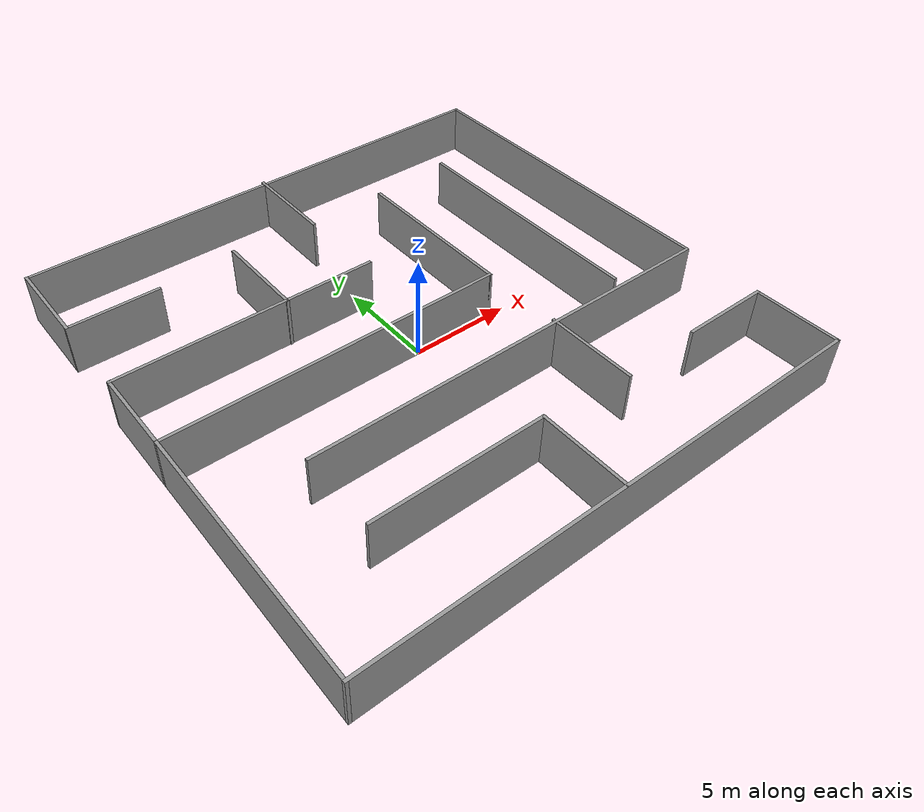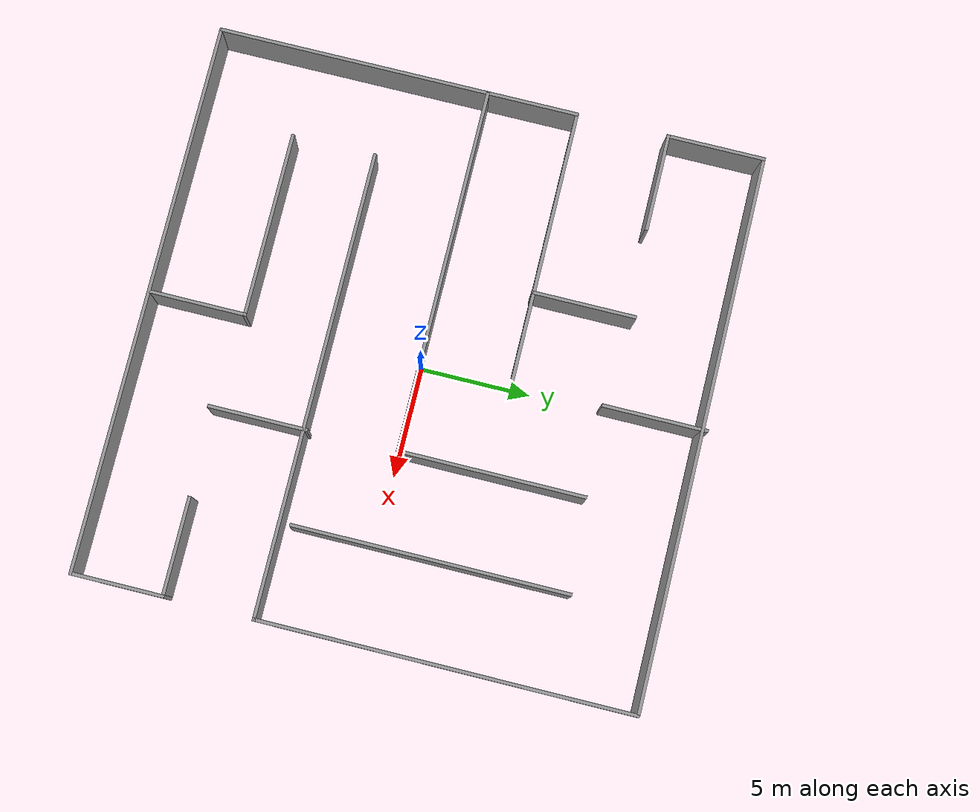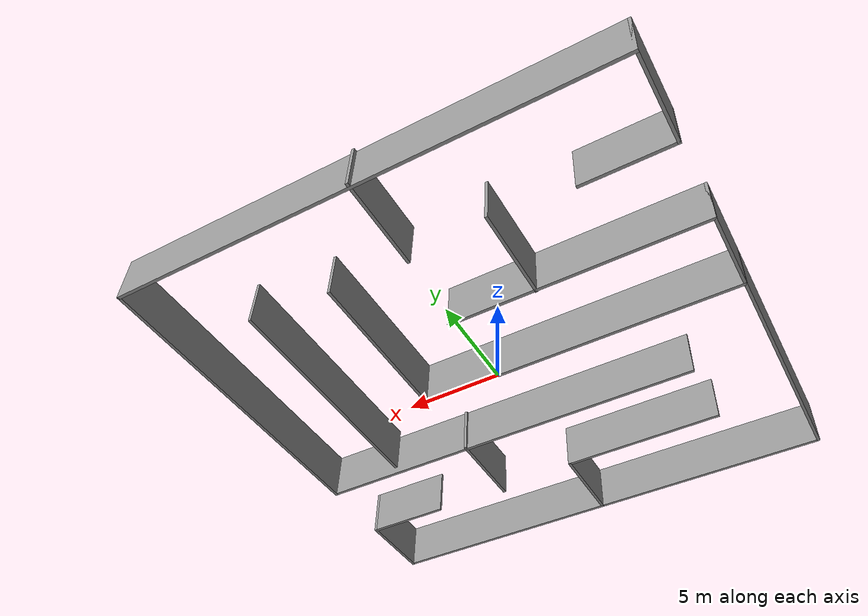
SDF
<?xml version='1.0'?>
<sdf version='1.7'>
  <model name='maze4'>
    <pose>0.052131 0.211234 0 0 -0 0</pose>
    <link name='Wall_186'>
      <collision name='Wall_186_Collision'>
        <geometry>
          <box>
            <size>4.5 0.15 2.5</size>
          </box>
        </geometry>
        <pose>0 0 1.25 0 -0 0</pose>
      </collision>
      <visual name='Wall_186_Visual'>
        <pose>0 0 1.25 0 -0 0</pose>
        <geometry>
          <box>
            <size>4.5 0.15 2.5</size>
          </box>
        </geometry>
        <material>
          <script>
            <uri>file://media/materials/scripts/gazebo.material</uri>
            <name>Gazebo/Grey</name>
          </script>
          <ambient>1 1 1 1</ambient>
        </material>
        <meta>
          <layer>0</layer>
        </meta>
      </visual>
      <pose>-10.3717 8.05219 0 0 -0 3.14159</pose>
    </link>
    <link name='Wall_187'>
      <collision name='Wall_187_Collision'>
        <geometry>
          <box>
            <size>4.5 0.15 2.5</size>
          </box>
        </geometry>
        <pose>0 0 1.25 0 -0 0</pose>
      </collision>
      <visual name='Wall_187_Visual'>
        <pose>0 0 1.25 0 -0 0</pose>
        <geometry>
          <box>
            <size>4.5 0.15 2.5</size>
          </box>
        </geometry>
        <material>
          <script>
            <uri>file://media/materials/scripts/gazebo.material</uri>
            <name>Gazebo/Grey</name>
          </script>
          <ambient>1 1 1 1</ambient>
        </material>
        <meta>
          <layer>0</layer>
        </meta>
      </visual>
      <pose>-12.5467 10.2272 0 0 -0 1.5708</pose>
    </link>
    <link name='Wall_188'>
      <collision name='Wall_188_Collision'>
        <geometry>
          <box>
            <size>25.25 0.15 2.5</size>
          </box>
        </geometry>
        <pose>0 0 1.25 0 -0 0</pose>
      </collision>
      <visual name='Wall_188_Visual'>
        <pose>0 0 1.25 0 -0 0</pose>
        <geometry>
          <box>
            <size>25.25 0.15 2.5</size>
          </box>
        </geometry>
        <material>
          <script>
            <uri>file://media/materials/scripts/gazebo.material</uri>
            <name>Gazebo/Grey</name>
          </script>
          <ambient>1 1 1 1</ambient>
        </material>
        <meta>
          <layer>0</layer>
        </meta>
      </visual>
      <pose>0.003348 12.4022 0 0 -0 0</pose>
    </link>
    <link name='Wall_189'>
      <collision name='Wall_189_Collision'>
        <geometry>
          <box>
            <size>17 0.15 2.5</size>
          </box>
        </geometry>
        <pose>0 0 1.25 0 -0 0</pose>
      </collision>
      <visual name='Wall_189_Visual'>
        <pose>0 0 1.25 0 -0 0</pose>
        <geometry>
          <box>
            <size>17 0.15 2.5</size>
          </box>
        </geometry>
        <material>
          <script>
            <uri>file://media/materials/scripts/gazebo.material</uri>
            <name>Gazebo/Grey</name>
          </script>
          <ambient>1 1 1 1</ambient>
        </material>
        <meta>
          <layer>0</layer>
        </meta>
      </visual>
      <pose>12.5533 3.97719 0 0 -0 -1.5708</pose>
    </link>
    <link name='Wall_190'>
      <collision name='Wall_190_Collision'>
        <geometry>
          <box>
            <size>21.25 0.15 2.5</size>
          </box>
        </geometry>
        <pose>0 0 1.25 0 -0 0</pose>
      </collision>
      <visual name='Wall_190_Visual'>
        <pose>0 0 1.25 0 -0 0</pose>
        <geometry>
          <box>
            <size>21.25 0.15 2.5</size>
          </box>
        </geometry>
        <material>
          <script>
            <uri>file://media/materials/scripts/gazebo.material</uri>
            <name>Gazebo/Grey</name>
          </script>
          <ambient>1 1 1 1</ambient>
        </material>
        <meta>
          <layer>0</layer>
        </meta>
      </visual>
      <pose>2.00335 -4.44781 0 0 -0 3.14159</pose>
    </link>
    <link name='Wall_192'>
      <collision name='Wall_192_Collision'>
        <geometry>
          <box>
            <size>4.75 0.15 2.5</size>
          </box>
        </geometry>
        <pose>0 0 1.25 0 -0 0</pose>
      </collision>
      <visual name='Wall_192_Visual'>
        <pose>0 0 1.25 0 -0 0</pose>
        <geometry>
          <box>
            <size>4.75 0.15 2.5</size>
          </box>
        </geometry>
        <material>
          <script>
            <uri>file://media/materials/scripts/gazebo.material</uri>
            <name>Gazebo/Grey</name>
          </script>
          <ambient>1 1 1 1</ambient>
        </material>
        <meta>
          <layer>0</layer>
        </meta>
      </visual>
      <pose>-0.035179 10.2818 0 0 -0 1.5708</pose>
    </link>
    <link name='Wall_194'>
      <collision name='Wall_194_Collision'>
        <geometry>
          <box>
            <size>12.5 0.15 2.5</size>
          </box>
        </geometry>
        <pose>0 0 1.25 0 -0 0</pose>
      </collision>
      <visual name='Wall_194_Visual'>
        <pose>0 0 1.25 0 -0 0</pose>
        <geometry>
          <box>
            <size>12.5 0.15 2.5</size>
          </box>
        </geometry>
        <material>
          <script>
            <uri>file://media/materials/scripts/gazebo.material</uri>
            <name>Gazebo/Grey</name>
          </script>
          <ambient>1 1 1 1</ambient>
        </material>
        <meta>
          <layer>0</layer>
        </meta>
      </visual>
      <pose>8.26701 2.26641 0 0 -0 1.5708</pose>
    </link>
    <link name='Wall_196'>
      <collision name='Wall_196_Collision'>
        <geometry>
          <box>
            <size>4.5 0.15 2.5</size>
          </box>
        </geometry>
        <pose>0 0 1.25 0 -0 0</pose>
      </collision>
      <visual name='Wall_196_Visual'>
        <pose>0 0 1.25 0 -0 0</pose>
        <geometry>
          <box>
            <size>4.5 0.15 2.5</size>
          </box>
        </geometry>
        <material>
          <script>
            <uri>file://media/materials/scripts/gazebo.material</uri>
            <name>Gazebo/Grey</name>
          </script>
          <ambient>1 1 1 1</ambient>
        </material>
        <meta>
          <layer>0</layer>
        </meta>
      </visual>
      <pose>4.11592 -6.50574 0 0 -0 -1.5708</pose>
    </link>
    <link name='Wall_198'>
      <collision name='Wall_198_Collision'>
        <geometry>
          <box>
            <size>4.5 0.15 2.5</size>
          </box>
        </geometry>
        <pose>0 0 1.25 0 -0 0</pose>
      </collision>
      <visual name='Wall_198_Visual'>
        <pose>0 0 1.25 0 -0 0</pose>
        <geometry>
          <box>
            <size>4.5 0.15 2.5</size>
          </box>
        </geometry>
        <material>
          <script>
            <uri>file://media/materials/scripts/gazebo.material</uri>
            <name>Gazebo/Grey</name>
          </script>
          <ambient>1 1 1 1</ambient>
        </material>
        <meta>
          <layer>0</layer>
        </meta>
      </visual>
      <pose>10.3717 -8.48183 0 0 -0 0</pose>
    </link>
    <link name='Wall_199'>
      <collision name='Wall_199_Collision'>
        <geometry>
          <box>
            <size>4.25 0.15 2.5</size>
          </box>
        </geometry>
        <pose>0 0 1.25 0 -0 0</pose>
      </collision>
      <visual name='Wall_199_Visual'>
        <pose>0 0 1.25 0 -0 0</pose>
        <geometry>
          <box>
            <size>4.25 0.15 2.5</size>
          </box>
        </geometry>
        <material>
          <script>
            <uri>file://media/materials/scripts/gazebo.material</uri>
            <name>Gazebo/Grey</name>
          </script>
          <ambient>1 1 1 1</ambient>
        </material>
        <meta>
          <layer>0</layer>
        </meta>
      </visual>
      <pose>12.5467 -10.5318 0 0 -0 -1.5708</pose>
    </link>
    <link name='Wall_200'>
      <collision name='Wall_200_Collision'>
        <geometry>
          <box>
            <size>25.25 0.15 2.5</size>
          </box>
        </geometry>
        <pose>0 0 1.25 0 -0 0</pose>
      </collision>
      <visual name='Wall_200_Visual'>
        <pose>0 0 1.25 0 -0 0</pose>
        <geometry>
          <box>
            <size>25.25 0.15 2.5</size>
          </box>
        </geometry>
        <material>
          <script>
            <uri>file://media/materials/scripts/gazebo.material</uri>
            <name>Gazebo/Grey</name>
          </script>
          <ambient>1 1 1 1</ambient>
        </material>
        <meta>
          <layer>0</layer>
        </meta>
      </visual>
      <pose>-0.003348 -12.5818 0 0 -0 3.14159</pose>
    </link>
    <link name='Wall_201'>
      <collision name='Wall_201_Collision'>
        <geometry>
          <box>
            <size>12.5 0.15 2.5</size>
          </box>
        </geometry>
        <pose>0 0 1.25 0 -0 0</pose>
      </collision>
      <visual name='Wall_201_Visual'>
        <pose>0 0 1.25 0 -0 0</pose>
        <geometry>
          <box>
            <size>12.5 0.15 2.5</size>
          </box>
        </geometry>
        <material>
          <script>
            <uri>file://media/materials/scripts/gazebo.material</uri>
            <name>Gazebo/Grey</name>
          </script>
          <ambient>1 1 1 1</ambient>
        </material>
        <meta>
          <layer>0</layer>
        </meta>
      </visual>
      <pose>-12.5533 -6.40683 0 0 -0 1.5708</pose>
    </link>
    <link name='Wall_202'>
      <collision name='Wall_202_Collision'>
        <geometry>
          <box>
            <size>16.75 0.15 2.5</size>
          </box>
        </geometry>
        <pose>0 0 1.25 0 -0 0</pose>
      </collision>
      <visual name='Wall_202_Visual'>
        <pose>0 0 1.25 0 -0 0</pose>
        <geometry>
          <box>
            <size>16.75 0.15 2.5</size>
          </box>
        </geometry>
        <material>
          <script>
            <uri>file://media/materials/scripts/gazebo.material</uri>
            <name>Gazebo/Grey</name>
          </script>
          <ambient>1 1 1 1</ambient>
        </material>
        <meta>
          <layer>0</layer>
        </meta>
      </visual>
      <pose>-4.25335 -0.23183 0 0 -0 0</pose>
    </link>
    <link name='Wall_203'>
      <collision name='Wall_203_Collision'>
        <geometry>
          <box>
            <size>8.5 0.15 2.5</size>
          </box>
        </geometry>
        <pose>0 0 1.25 0 -0 0</pose>
      </collision>
      <visual name='Wall_203_Visual'>
        <pose>0 0 1.25 0 -0 0</pose>
        <geometry>
          <box>
            <size>8.5 0.15 2.5</size>
          </box>
        </geometry>
        <material>
          <script>
            <uri>file://media/materials/scripts/gazebo.material</uri>
            <name>Gazebo/Grey</name>
          </script>
          <ambient>1 1 1 1</ambient>
        </material>
        <meta>
          <layer>0</layer>
        </meta>
      </visual>
      <pose>4.04665 3.94317 0 0 -0 1.5708</pose>
    </link>
    <link name='Wall_205'>
      <collision name='Wall_205_Collision'>
        <geometry>
          <box>
            <size>4.25 0.15 2.5</size>
          </box>
        </geometry>
        <pose>0 0 1.25 0 -0 0</pose>
      </collision>
      <visual name='Wall_205_Visual'>
        <pose>0 0 1.25 0 -0 0</pose>
        <geometry>
          <box>
            <size>4.25 0.15 2.5</size>
          </box>
        </geometry>
        <material>
          <script>
            <uri>file://media/materials/scripts/gazebo.material</uri>
            <name>Gazebo/Grey</name>
          </script>
          <ambient>1 1 1 1</ambient>
        </material>
        <meta>
          <layer>0</layer>
        </meta>
      </visual>
      <pose>-12.5533 1.81817 0 0 -0 1.5708</pose>
    </link>
    <link name='Wall_206'>
      <collision name='Wall_206_Collision'>
        <geometry>
          <box>
            <size>13 0.15 2.5</size>
          </box>
        </geometry>
        <pose>0 0 1.25 0 -0 0</pose>
      </collision>
      <visual name='Wall_206_Visual'>
        <pose>0 0 1.25 0 -0 0</pose>
        <geometry>
          <box>
            <size>13 0.15 2.5</size>
          </box>
        </geometry>
        <material>
          <script>
            <uri>file://media/materials/scripts/gazebo.material</uri>
            <name>Gazebo/Grey</name>
          </script>
          <ambient>1 1 1 1</ambient>
        </material>
        <meta>
          <layer>0</layer>
        </meta>
      </visual>
      <pose>-6.12835 3.86817 0 0 -0 0</pose>
    </link>
    <link name='Wall_208'>
      <collision name='Wall_208_Collision'>
        <geometry>
          <box>
            <size>4.75 0.15 2.5</size>
          </box>
        </geometry>
        <pose>0 0 1.25 0 -0 0</pose>
      </collision>
      <visual name='Wall_208_Visual'>
        <pose>0 0 1.25 0 -0 0</pose>
        <geometry>
          <box>
            <size>4.75 0.15 2.5</size>
          </box>
        </geometry>
        <material>
          <script>
            <uri>file://media/materials/scripts/gazebo.material</uri>
            <name>Gazebo/Grey</name>
          </script>
          <ambient>1 1 1 1</ambient>
        </material>
        <meta>
          <layer>0</layer>
        </meta>
      </visual>
      <pose>-4.18627 6.13074 0 0 -0 1.5708</pose>
    </link>
    <link name='Wall_210'>
      <collision name='Wall_210_Collision'>
        <geometry>
          <box>
            <size>4.5 0.15 2.5</size>
          </box>
        </geometry>
        <pose>0 0 1.25 0 -0 0</pose>
      </collision>
      <visual name='Wall_210_Visual'>
        <pose>0 0 1.25 0 -0 0</pose>
        <geometry>
          <box>
            <size>4.5 0.15 2.5</size>
          </box>
        </geometry>
        <material>
          <script>
            <uri>file://media/materials/scripts/gazebo.material</uri>
            <name>Gazebo/Grey</name>
          </script>
          <ambient>1 1 1 1</ambient>
        </material>
        <meta>
          <layer>0</layer>
        </meta>
      </visual>
      <pose>-0.175894 -10.3876 0 0 -0 1.5708</pose>
    </link>
    <link name='Wall_211'>
      <collision name='Wall_211_Collision'>
        <geometry>
          <box>
            <size>8.5 0.15 2.5</size>
          </box>
        </geometry>
        <pose>0 0 1.25 0 -0 0</pose>
      </collision>
      <visual name='Wall_211_Visual'>
        <pose>0 0 1.25 0 -0 0</pose>
        <geometry>
          <box>
            <size>8.5 0.15 2.5</size>
          </box>
        </geometry>
        <material>
          <script>
            <uri>file://media/materials/scripts/gazebo.material</uri>
            <name>Gazebo/Grey</name>
          </script>
          <ambient>1 1 1 1</ambient>
        </material>
        <meta>
          <layer>0</layer>
        </meta>
      </visual>
      <pose>-4.35089 -8.21257 0 0 -0 3.14159</pose>
    </link>
    <static>1</static>
  </model>
</sdf>
